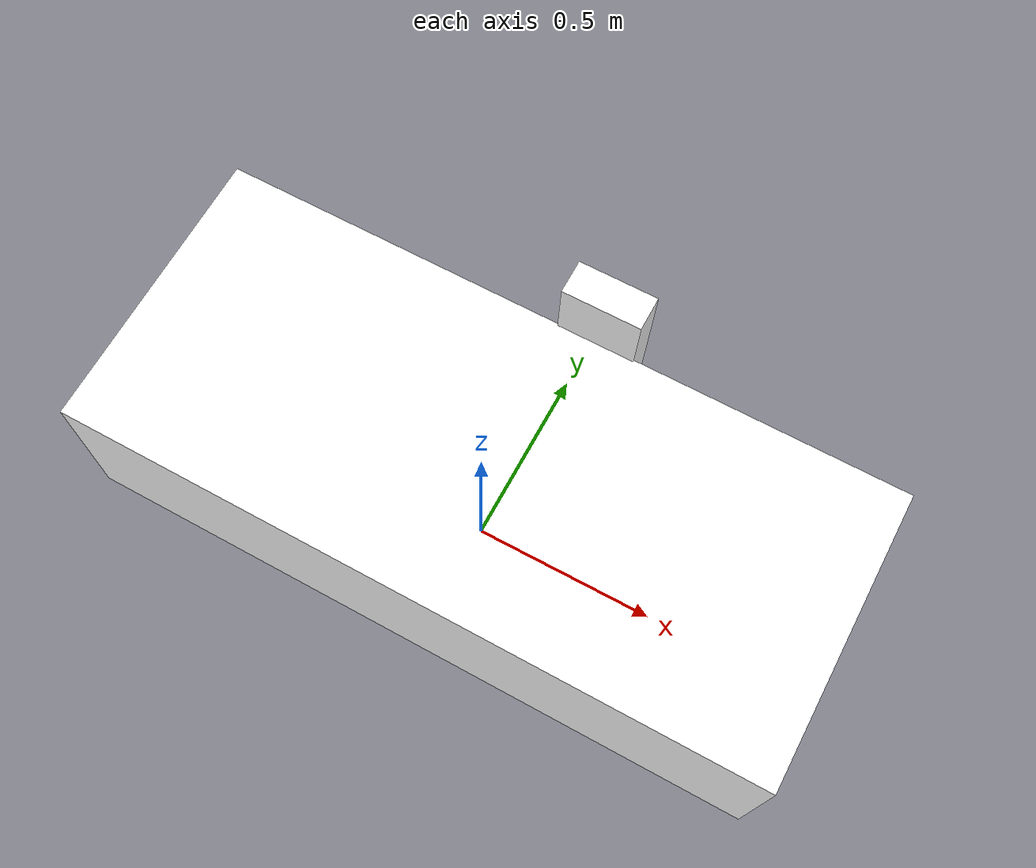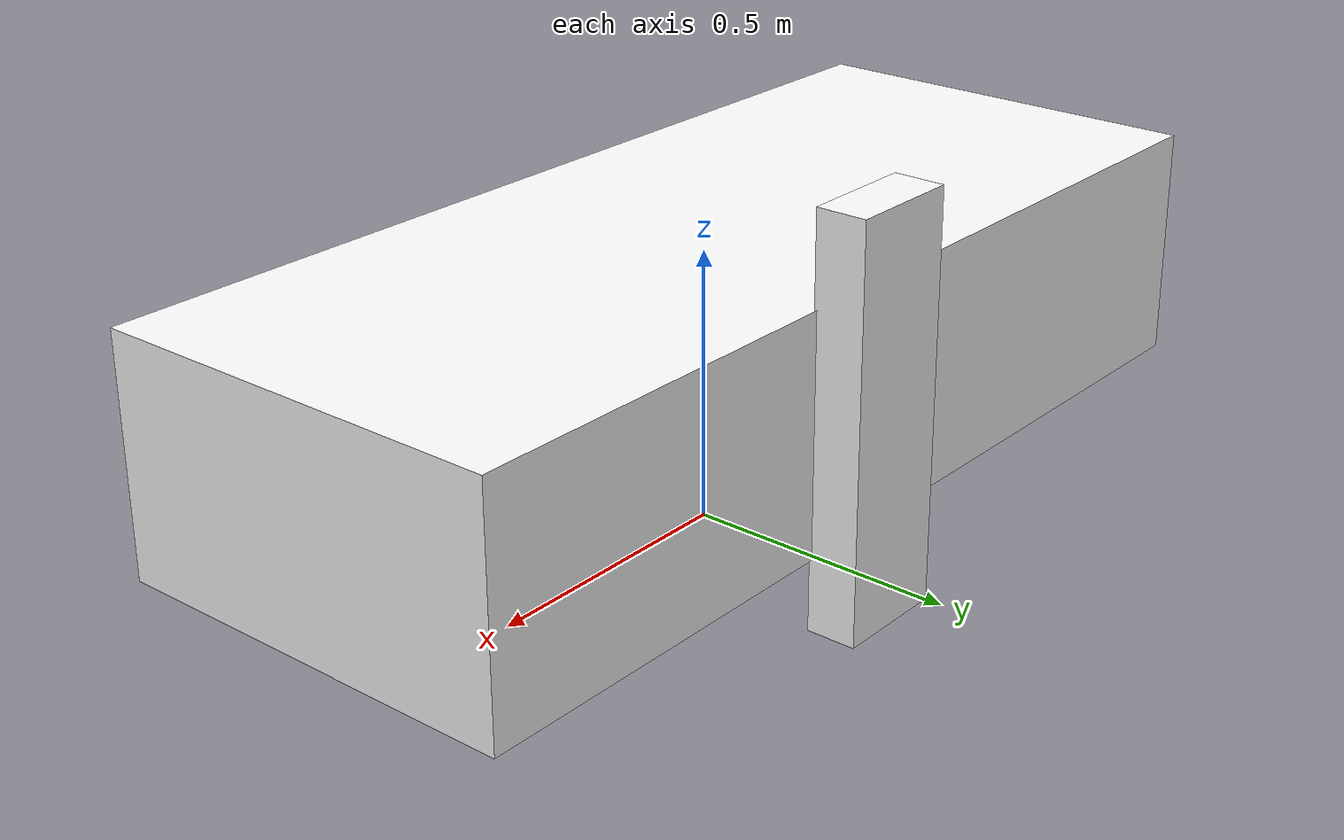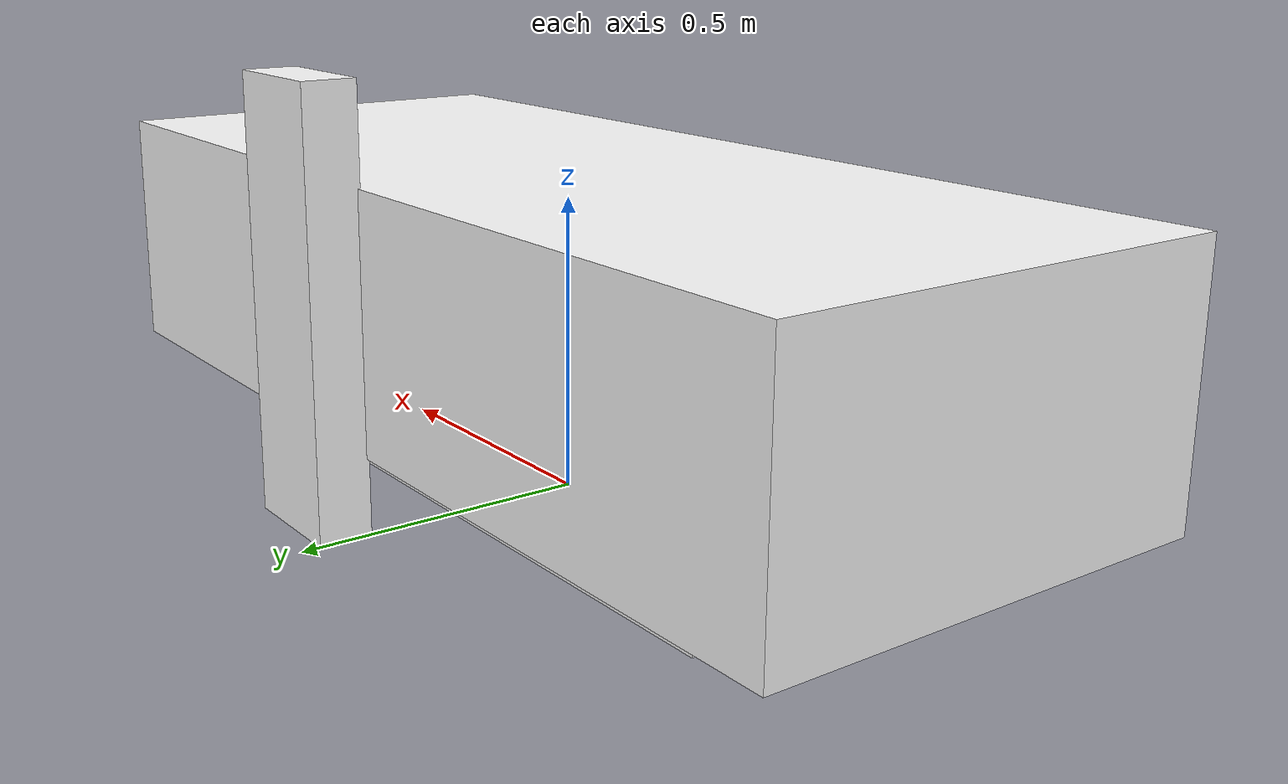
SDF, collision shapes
<?xml version="1.0" encoding="UTF-8"?>
<sdf version="1.6">
  <model name="Bathtub">
    <static>true</static>
    <link name="base_link">
      <visual name="visual">
        <geometry>
          <mesh>
            <uri>meshes/bathtub.dae</uri>
          </mesh>
        </geometry>
        <material>
          <diffuse>1.0 1.0 1.0</diffuse>
          <specular>1.0 1.0 1.0</specular>
          <pbr>
            <metal>
              <albedo_map>materials/textures/Bathtub_Albedo.jpg</albedo_map>
              <normal_map>materials/textures/Bathtub_Normal.png</normal_map>
              <roughness_map>materials/textures/Bathtub_Roughness.jpg</roughness_map>
              <metalness_map>materials/textures/Bathtub_Metalness.jpg</metalness_map>
            </metal>
          </pbr>
        </material>
      </visual>
      <collision name="Box003">
        <pose>0.0 0.0 0.341135 0.0 0.0 0.0</pose>
        <geometry>
          <box>
            <size>1.83106 0.767396 0.426196</size>
          </box>
        </geometry>
      </collision>
      <collision name="Box002">
        <pose>0.100994 0.424134 0.359413 0.0 0.0 0.0</pose>
        <geometry>
          <box>
            <size>0.20341 0.0898533 0.718826</size>
          </box>
        </geometry>
      </collision>
      <collision name="Box001">
        <pose>-0.0080871 -0.00691932 0.077711 0.0 0.0 0.0</pose>
        <geometry>
          <box>
            <size>1.20452 0.471123 0.155422</size>
          </box>
        </geometry>
      </collision>
    </link>
  </model>
</sdf>
